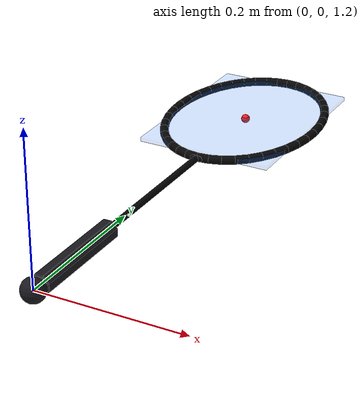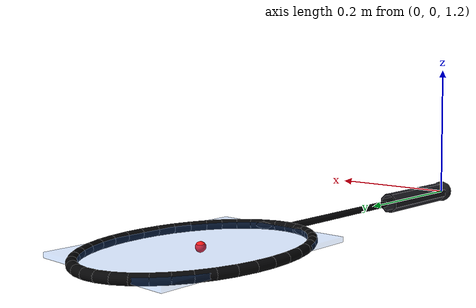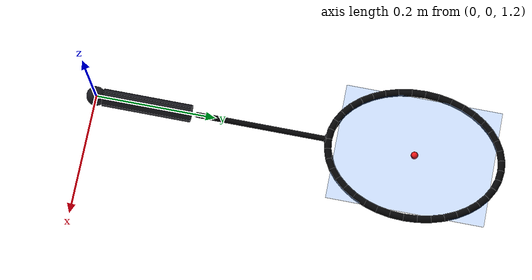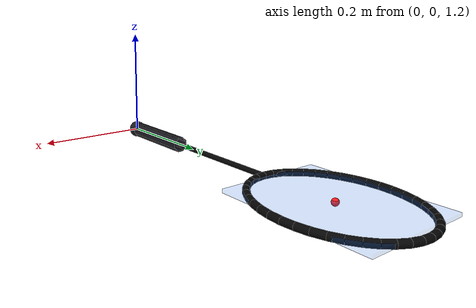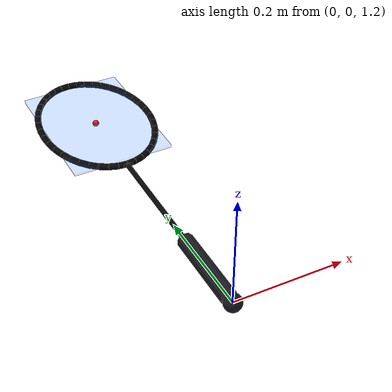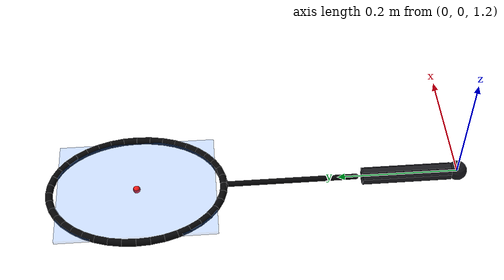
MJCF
<?xml version="1.0" encoding="UTF-8"?>
<mujoco model="badminton_racket_rigid">
  <compiler angle="degree" autolimits="true"/>
  <option timestep="0.0005" integrator="implicitfast" gravity="0 0 -9.81"/>
  <default>
    <geom condim="3" friction="0.8 0.02 0.001" solref="0.0015 1" solimp="0.95 0.99 0.001"/>
    <site rgba="1 0.3 0.1 1"/>
    <default class="frame_contact">
      <geom contype="1" conaffinity="1"/>
    </default>
    <default class="string_visual">
      <geom contype="0" conaffinity="0"/>
    </default>
    <default class="stringbed_ground_contact">
      <geom contype="1" conaffinity="1" group="1" condim="4" friction="1.1 0.05 0.003" solref="0.004 1" solimp="0.92 0.98 0.001"/>
    </default>
  </default>
  <worldbody>
    <body name="racket" pos="0 0 1.2">
      <freejoint name="racket_free"/>
      <inertial pos="0 0.31 0" mass="0.09" diaginertia="0.004944 0.00018 0.0049"/>
      <site name="grip_pose_site" pos="0 0.09 0" size="0.006"/>
      <site name="butt_site" pos="0 0 0" size="0.004" rgba="0.1 1 0.1 1"/>
      <site name="stringbed_center_site" pos="0 0.532 0" size="0.006" rgba="1 0.1 0.1 1"/>
      <site name="head_tip_site" pos="0 0.675 0" size="0.004" rgba="1 1 0 1"/>
      <geom name="butt_cap" class="frame_contact" type="sphere" pos="0 0 0" size="0.016" rgba="0.1 0.1 0.12 1" contype="1" conaffinity="1"/>
      <geom name="handle_grip" type="capsule" pos="0 0.086 0" quat="0.707107 0.707107 0 0" size="0.01321 0.074" rgba="0.1 0.1 0.12 0" contype="0" conaffinity="0" condim="4" friction="1.4 0.03 0.003" solref="0.004 1" solimp="0.9 0.97 0.002" margin="0.001"/>
      <geom name="handle_bevel_00" class="frame_contact" type="box" pos="0.012525 0.086 0" quat="0.707107 0 0.707107 0" size="0.00519 0.074 0.001" rgba="0.1 0.1 0.12 1" contype="1" conaffinity="1"/>
      <geom name="handle_bevel_01" class="frame_contact" type="box" pos="0.008857 0.086 0.008857" quat="0.92388 0 0.382683 0" size="0.00519 0.074 0.001" rgba="0.1 0.1 0.12 1" contype="1" conaffinity="1"/>
      <geom name="handle_bevel_02" class="frame_contact" type="box" pos="0 0.086 0.012525" quat="1 0 0 0" size="0.00519 0.074 0.001" rgba="0.1 0.1 0.12 1" contype="1" conaffinity="1"/>
      <geom name="handle_bevel_03" class="frame_contact" type="box" pos="-0.008857 0.086 0.008857" quat="0.92388 0 -0.382683 0" size="0.00519 0.074 0.001" rgba="0.1 0.1 0.12 1" contype="1" conaffinity="1"/>
      <geom name="handle_bevel_04" class="frame_contact" type="box" pos="-0.012525 0.086 0" quat="0.707107 0 -0.707107 0" size="0.00519 0.074 0.001" rgba="0.1 0.1 0.12 1" contype="1" conaffinity="1"/>
      <geom name="handle_bevel_05" class="frame_contact" type="box" pos="-0.008857 0.086 -0.008857" quat="0.382683 0 -0.92388 0" size="0.00519 0.074 0.001" rgba="0.1 0.1 0.12 1" contype="1" conaffinity="1"/>
      <geom name="handle_bevel_06" class="frame_contact" type="box" pos="0 0.086 -0.012525" quat="0 0 -1 0" size="0.00519 0.074 0.001" rgba="0.1 0.1 0.12 1" contype="1" conaffinity="1"/>
      <geom name="handle_bevel_07" class="frame_contact" type="box" pos="0.008857 0.086 -0.008857" quat="-0.382683 0 -0.92388 0" size="0.00519 0.074 0.001" rgba="0.1 0.1 0.12 1" contype="1" conaffinity="1"/>
      <geom name="shaft" class="frame_contact" type="capsule" fromto="0 0.17 0 0 0.385 0" size="0.0045" rgba="0.02 0.02 0.025 1" contype="1" conaffinity="1"/>
      <geom name="throat_left" class="frame_contact" type="capsule" fromto="0 0.385 0 -0.052 0.407 0" size="0.0045" rgba="0.02 0.02 0.025 1" contype="1" conaffinity="1"/>
      <geom name="throat_right" class="frame_contact" type="capsule" fromto="0 0.385 0 0.052 0.407 0" size="0.0045" rgba="0.02 0.02 0.025 1" contype="1" conaffinity="1"/>
      <geom name="head_frame_00" class="frame_contact" type="capsule" fromto="0.105 0.532 0 0.103707 0.55437 0" size="0.006" rgba="0.02 0.02 0.025 1" contype="1" conaffinity="1"/>
      <geom name="head_frame_01" class="frame_contact" type="capsule" fromto="0.103707 0.55437 0 0.099861 0.576189 0" size="0.006" rgba="0.02 0.02 0.025 1" contype="1" conaffinity="1"/>
      <geom name="head_frame_02" class="frame_contact" type="capsule" fromto="0.099861 0.576189 0 0.093556 0.596921 0" size="0.006" rgba="0.02 0.02 0.025 1" contype="1" conaffinity="1"/>
      <geom name="head_frame_03" class="frame_contact" type="capsule" fromto="0.093556 0.596921 0 0.084947 0.616053 0" size="0.006" rgba="0.02 0.02 0.025 1" contype="1" conaffinity="1"/>
      <geom name="head_frame_04" class="frame_contact" type="capsule" fromto="0.084947 0.616053 0 0.074246 0.633116 0" size="0.006" rgba="0.02 0.02 0.025 1" contype="1" conaffinity="1"/>
      <geom name="head_frame_05" class="frame_contact" type="capsule" fromto="0.074246 0.633116 0 0.061717 0.647689 0" size="0.006" rgba="0.02 0.02 0.025 1" contype="1" conaffinity="1"/>
      <geom name="head_frame_06" class="frame_contact" type="capsule" fromto="0.061717 0.647689 0 0.047669 0.659414 0" size="0.006" rgba="0.02 0.02 0.025 1" contype="1" conaffinity="1"/>
      <geom name="head_frame_07" class="frame_contact" type="capsule" fromto="0.047669 0.659414 0 0.032447 0.668001 0" size="0.006" rgba="0.02 0.02 0.025 1" contype="1" conaffinity="1"/>
      <geom name="head_frame_08" class="frame_contact" type="capsule" fromto="0.032447 0.668001 0 0.016426 0.673239 0" size="0.006" rgba="0.02 0.02 0.025 1" contype="1" conaffinity="1"/>
      <geom name="head_frame_09" class="frame_contact" type="capsule" fromto="0.016426 0.673239 0 0 0.675 0" size="0.006" rgba="0.02 0.02 0.025 1" contype="1" conaffinity="1"/>
      <geom name="head_frame_10" class="frame_contact" type="capsule" fromto="0 0.675 0 -0.016426 0.673239 0" size="0.006" rgba="0.02 0.02 0.025 1" contype="1" conaffinity="1"/>
      <geom name="head_frame_11" class="frame_contact" type="capsule" fromto="-0.016426 0.673239 0 -0.032447 0.668001 0" size="0.006" rgba="0.02 0.02 0.025 1" contype="1" conaffinity="1"/>
      <geom name="head_frame_12" class="frame_contact" type="capsule" fromto="-0.032447 0.668001 0 -0.047669 0.659414 0" size="0.006" rgba="0.02 0.02 0.025 1" contype="1" conaffinity="1"/>
      <geom name="head_frame_13" class="frame_contact" type="capsule" fromto="-0.047669 0.659414 0 -0.061717 0.647689 0" size="0.006" rgba="0.02 0.02 0.025 1" contype="1" conaffinity="1"/>
      <geom name="head_frame_14" class="frame_contact" type="capsule" fromto="-0.061717 0.647689 0 -0.074246 0.633116 0" size="0.006" rgba="0.02 0.02 0.025 1" contype="1" conaffinity="1"/>
      <geom name="head_frame_15" class="frame_contact" type="capsule" fromto="-0.074246 0.633116 0 -0.084947 0.616053 0" size="0.006" rgba="0.02 0.02 0.025 1" contype="1" conaffinity="1"/>
      <geom name="head_frame_16" class="frame_contact" type="capsule" fromto="-0.084947 0.616053 0 -0.093556 0.596921 0" size="0.006" rgba="0.02 0.02 0.025 1" contype="1" conaffinity="1"/>
      <geom name="head_frame_17" class="frame_contact" type="capsule" fromto="-0.093556 0.596921 0 -0.099861 0.576189 0" size="0.006" rgba="0.02 0.02 0.025 1" contype="1" conaffinity="1"/>
      <geom name="head_frame_18" class="frame_contact" type="capsule" fromto="-0.099861 0.576189 0 -0.103707 0.55437 0" size="0.006" rgba="0.02 0.02 0.025 1" contype="1" conaffinity="1"/>
      <geom name="head_frame_19" class="frame_contact" type="capsule" fromto="-0.103707 0.55437 0 -0.105 0.532 0" size="0.006" rgba="0.02 0.02 0.025 1" contype="1" conaffinity="1"/>
      <geom name="head_frame_20" class="frame_contact" type="capsule" fromto="-0.105 0.532 0 -0.103707 0.50963 0" size="0.006" rgba="0.02 0.02 0.025 1" contype="1" conaffinity="1"/>
      <geom name="head_frame_21" class="frame_contact" type="capsule" fromto="-0.103707 0.50963 0 -0.099861 0.487811 0" size="0.006" rgba="0.02 0.02 0.025 1" contype="1" conaffinity="1"/>
      <geom name="head_frame_22" class="frame_contact" type="capsule" fromto="-0.099861 0.487811 0 -0.093556 0.467079 0" size="0.006" rgba="0.02 0.02 0.025 1" contype="1" conaffinity="1"/>
      <geom name="head_frame_23" class="frame_contact" type="capsule" fromto="-0.093556 0.467079 0 -0.084947 0.447947 0" size="0.006" rgba="0.02 0.02 0.025 1" contype="1" conaffinity="1"/>
      <geom name="head_frame_24" class="frame_contact" type="capsule" fromto="-0.084947 0.447947 0 -0.074246 0.430884 0" size="0.006" rgba="0.02 0.02 0.025 1" contype="1" conaffinity="1"/>
      <geom name="head_frame_25" class="frame_contact" type="capsule" fromto="-0.074246 0.430884 0 -0.061717 0.416311 0" size="0.006" rgba="0.02 0.02 0.025 1" contype="1" conaffinity="1"/>
      <geom name="head_frame_26" class="frame_contact" type="capsule" fromto="-0.061717 0.416311 0 -0.047669 0.404586 0" size="0.006" rgba="0.02 0.02 0.025 1" contype="1" conaffinity="1"/>
      <geom name="head_frame_27" class="frame_contact" type="capsule" fromto="-0.047669 0.404586 0 -0.032447 0.395999 0" size="0.006" rgba="0.02 0.02 0.025 1" contype="1" conaffinity="1"/>
      <geom name="head_frame_28" class="frame_contact" type="capsule" fromto="-0.032447 0.395999 0 -0.016426 0.390761 0" size="0.006" rgba="0.02 0.02 0.025 1" contype="1" conaffinity="1"/>
      <geom name="head_frame_29" class="frame_contact" type="capsule" fromto="-0.016426 0.390761 0 0 0.389 0" size="0.006" rgba="0.02 0.02 0.025 1" contype="1" conaffinity="1"/>
      <geom name="head_frame_30" class="frame_contact" type="capsule" fromto="0 0.389 0 0.016426 0.390761 0" size="0.006" rgba="0.02 0.02 0.025 1" contype="1" conaffinity="1"/>
      <geom name="head_frame_31" class="frame_contact" type="capsule" fromto="0.016426 0.390761 0 0.032447 0.395999 0" size="0.006" rgba="0.02 0.02 0.025 1" contype="1" conaffinity="1"/>
      <geom name="head_frame_32" class="frame_contact" type="capsule" fromto="0.032447 0.395999 0 0.047669 0.404586 0" size="0.006" rgba="0.02 0.02 0.025 1" contype="1" conaffinity="1"/>
      <geom name="head_frame_33" class="frame_contact" type="capsule" fromto="0.047669 0.404586 0 0.061717 0.416311 0" size="0.006" rgba="0.02 0.02 0.025 1" contype="1" conaffinity="1"/>
      <geom name="head_frame_34" class="frame_contact" type="capsule" fromto="0.061717 0.416311 0 0.074246 0.430884 0" size="0.006" rgba="0.02 0.02 0.025 1" contype="1" conaffinity="1"/>
      <geom name="head_frame_35" class="frame_contact" type="capsule" fromto="0.074246 0.430884 0 0.084947 0.447947 0" size="0.006" rgba="0.02 0.02 0.025 1" contype="1" conaffinity="1"/>
      <geom name="head_frame_36" class="frame_contact" type="capsule" fromto="0.084947 0.447947 0 0.093556 0.467079 0" size="0.006" rgba="0.02 0.02 0.025 1" contype="1" conaffinity="1"/>
      <geom name="head_frame_37" class="frame_contact" type="capsule" fromto="0.093556 0.467079 0 0.099861 0.487811 0" size="0.006" rgba="0.02 0.02 0.025 1" contype="1" conaffinity="1"/>
      <geom name="head_frame_38" class="frame_contact" type="capsule" fromto="0.099861 0.487811 0 0.103707 0.50963 0" size="0.006" rgba="0.02 0.02 0.025 1" contype="1" conaffinity="1"/>
      <geom name="head_frame_39" class="frame_contact" type="capsule" fromto="0.103707 0.50963 0 0.105 0.532 0" size="0.006" rgba="0.02 0.02 0.025 1" contype="1" conaffinity="1"/>
      <geom name="string_main_00" class="string_visual" type="capsule" fromto="-0.08836 0.488841 0.00055 -0.08836 0.575159 0.00055" size="0.00035" rgba="0.92 0.92 0.86 0.78" contype="0" conaffinity="0"/>
      <geom name="string_main_01" class="string_visual" type="capsule" fromto="-0.079945 0.465459 0.00055 -0.079945 0.598541 0.00055" size="0.00035" rgba="0.92 0.92 0.86 0.78" contype="0" conaffinity="0"/>
      <geom name="string_main_02" class="string_visual" type="capsule" fromto="-0.07153 0.449926 0.00055 -0.07153 0.614074 0.00055" size="0.00035" rgba="0.92 0.92 0.86 0.78" contype="0" conaffinity="0"/>
      <geom name="string_main_03" class="string_visual" type="capsule" fromto="-0.063114 0.438255 0.00055 -0.063114 0.625745 0.00055" size="0.00035" rgba="0.92 0.92 0.86 0.78" contype="0" conaffinity="0"/>
      <geom name="string_main_04" class="string_visual" type="capsule" fromto="-0.054699 0.429123 0.00055 -0.054699 0.634877 0.00055" size="0.00035" rgba="0.92 0.92 0.86 0.78" contype="0" conaffinity="0"/>
      <geom name="string_main_05" class="string_visual" type="capsule" fromto="-0.046284 0.421897 0.00055 -0.046284 0.642103 0.00055" size="0.00035" rgba="0.92 0.92 0.86 0.78" contype="0" conaffinity="0"/>
      <geom name="string_main_06" class="string_visual" type="capsule" fromto="-0.037869 0.416219 0.00055 -0.037869 0.647781 0.00055" size="0.00035" rgba="0.92 0.92 0.86 0.78" contype="0" conaffinity="0"/>
      <geom name="string_main_07" class="string_visual" type="capsule" fromto="-0.029453 0.41187 0.00055 -0.029453 0.65213 0.00055" size="0.00035" rgba="0.92 0.92 0.86 0.78" contype="0" conaffinity="0"/>
      <geom name="string_main_08" class="string_visual" type="capsule" fromto="-0.021038 0.408709 0.00055 -0.021038 0.655291 0.00055" size="0.00035" rgba="0.92 0.92 0.86 0.78" contype="0" conaffinity="0"/>
      <geom name="string_main_09" class="string_visual" type="capsule" fromto="-0.012623 0.406646 0.00055 -0.012623 0.657354 0.00055" size="0.00035" rgba="0.92 0.92 0.86 0.78" contype="0" conaffinity="0"/>
      <geom name="string_main_10" class="string_visual" type="capsule" fromto="-0.004208 0.405627 0.00055 -0.004208 0.658373 0.00055" size="0.00035" rgba="0.92 0.92 0.86 0.78" contype="0" conaffinity="0"/>
      <geom name="string_main_11" class="string_visual" type="capsule" fromto="0.004208 0.405627 0.00055 0.004208 0.658373 0.00055" size="0.00035" rgba="0.92 0.92 0.86 0.78" contype="0" conaffinity="0"/>
      <geom name="string_main_12" class="string_visual" type="capsule" fromto="0.012623 0.406646 0.00055 0.012623 0.657354 0.00055" size="0.00035" rgba="0.92 0.92 0.86 0.78" contype="0" conaffinity="0"/>
      <geom name="string_main_13" class="string_visual" type="capsule" fromto="0.021038 0.408709 0.00055 0.021038 0.655291 0.00055" size="0.00035" rgba="0.92 0.92 0.86 0.78" contype="0" conaffinity="0"/>
      <geom name="string_main_14" class="string_visual" type="capsule" fromto="0.029453 0.41187 0.00055 0.029453 0.65213 0.00055" size="0.00035" rgba="0.92 0.92 0.86 0.78" contype="0" conaffinity="0"/>
      <geom name="string_main_15" class="string_visual" type="capsule" fromto="0.037869 0.416219 0.00055 0.037869 0.647781 0.00055" size="0.00035" rgba="0.92 0.92 0.86 0.78" contype="0" conaffinity="0"/>
      <geom name="string_main_16" class="string_visual" type="capsule" fromto="0.046284 0.421897 0.00055 0.046284 0.642103 0.00055" size="0.00035" rgba="0.92 0.92 0.86 0.78" contype="0" conaffinity="0"/>
      <geom name="string_main_17" class="string_visual" type="capsule" fromto="0.054699 0.429123 0.00055 0.054699 0.634877 0.00055" size="0.00035" rgba="0.92 0.92 0.86 0.78" contype="0" conaffinity="0"/>
      <geom name="string_main_18" class="string_visual" type="capsule" fromto="0.063114 0.438255 0.00055 0.063114 0.625745 0.00055" size="0.00035" rgba="0.92 0.92 0.86 0.78" contype="0" conaffinity="0"/>
      <geom name="string_main_19" class="string_visual" type="capsule" fromto="0.07153 0.449926 0.00055 0.07153 0.614074 0.00055" size="0.00035" rgba="0.92 0.92 0.86 0.78" contype="0" conaffinity="0"/>
      <geom name="string_main_20" class="string_visual" type="capsule" fromto="0.079945 0.465459 0.00055 0.079945 0.598541 0.00055" size="0.00035" rgba="0.92 0.92 0.86 0.78" contype="0" conaffinity="0"/>
      <geom name="string_main_21" class="string_visual" type="capsule" fromto="0.08836 0.488841 0.00055 0.08836 0.575159 0.00055" size="0.00035" rgba="0.92 0.92 0.86 0.78" contype="0" conaffinity="0"/>
      <geom name="string_cross_00" class="string_visual" type="capsule" fromto="-0.03207 0.41309 -0.00055 0.03207 0.41309 -0.00055" size="0.00035" rgba="0.92 0.92 0.86 0.78" contype="0" conaffinity="0"/>
      <geom name="string_cross_01" class="string_visual" type="capsule" fromto="-0.050119 0.424981 -0.00055 0.050119 0.424981 -0.00055" size="0.00035" rgba="0.92 0.92 0.86 0.78" contype="0" conaffinity="0"/>
      <geom name="string_cross_02" class="string_visual" type="capsule" fromto="-0.061961 0.436872 -0.00055 0.061961 0.436872 -0.00055" size="0.00035" rgba="0.92 0.92 0.86 0.78" contype="0" conaffinity="0"/>
      <geom name="string_cross_03" class="string_visual" type="capsule" fromto="-0.070784 0.448763 -0.00055 0.070784 0.448763 -0.00055" size="0.00035" rgba="0.92 0.92 0.86 0.78" contype="0" conaffinity="0"/>
      <geom name="string_cross_04" class="string_visual" type="capsule" fromto="-0.077623 0.460654 -0.00055 0.077623 0.460654 -0.00055" size="0.00035" rgba="0.92 0.92 0.86 0.78" contype="0" conaffinity="0"/>
      <geom name="string_cross_05" class="string_visual" type="capsule" fromto="-0.082971 0.472545 -0.00055 0.082971 0.472545 -0.00055" size="0.00035" rgba="0.92 0.92 0.86 0.78" contype="0" conaffinity="0"/>
      <geom name="string_cross_06" class="string_visual" type="capsule" fromto="-0.087102 0.484436 -0.00055 0.087102 0.484436 -0.00055" size="0.00035" rgba="0.92 0.92 0.86 0.78" contype="0" conaffinity="0"/>
      <geom name="string_cross_07" class="string_visual" type="capsule" fromto="-0.090185 0.496327 -0.00055 0.090185 0.496327 -0.00055" size="0.00035" rgba="0.92 0.92 0.86 0.78" contype="0" conaffinity="0"/>
      <geom name="string_cross_08" class="string_visual" type="capsule" fromto="-0.092324 0.508218 -0.00055 0.092324 0.508218 -0.00055" size="0.00035" rgba="0.92 0.92 0.86 0.78" contype="0" conaffinity="0"/>
      <geom name="string_cross_09" class="string_visual" type="capsule" fromto="-0.093584 0.520109 -0.00055 0.093584 0.520109 -0.00055" size="0.00035" rgba="0.92 0.92 0.86 0.78" contype="0" conaffinity="0"/>
      <geom name="string_cross_10" class="string_visual" type="capsule" fromto="-0.094 0.532 -0.00055 0.094 0.532 -0.00055" size="0.00035" rgba="0.92 0.92 0.86 0.78" contype="0" conaffinity="0"/>
      <geom name="string_cross_11" class="string_visual" type="capsule" fromto="-0.093584 0.543891 -0.00055 0.093584 0.543891 -0.00055" size="0.00035" rgba="0.92 0.92 0.86 0.78" contype="0" conaffinity="0"/>
      <geom name="string_cross_12" class="string_visual" type="capsule" fromto="-0.092324 0.555782 -0.00055 0.092324 0.555782 -0.00055" size="0.00035" rgba="0.92 0.92 0.86 0.78" contype="0" conaffinity="0"/>
      <geom name="string_cross_13" class="string_visual" type="capsule" fromto="-0.090185 0.567673 -0.00055 0.090185 0.567673 -0.00055" size="0.00035" rgba="0.92 0.92 0.86 0.78" contype="0" conaffinity="0"/>
      <geom name="string_cross_14" class="string_visual" type="capsule" fromto="-0.087102 0.579564 -0.00055 0.087102 0.579564 -0.00055" size="0.00035" rgba="0.92 0.92 0.86 0.78" contype="0" conaffinity="0"/>
      <geom name="string_cross_15" class="string_visual" type="capsule" fromto="-0.082971 0.591455 -0.00055 0.082971 0.591455 -0.00055" size="0.00035" rgba="0.92 0.92 0.86 0.78" contype="0" conaffinity="0"/>
      <geom name="string_cross_16" class="string_visual" type="capsule" fromto="-0.077623 0.603346 -0.00055 0.077623 0.603346 -0.00055" size="0.00035" rgba="0.92 0.92 0.86 0.78" contype="0" conaffinity="0"/>
      <geom name="string_cross_17" class="string_visual" type="capsule" fromto="-0.070784 0.615237 -0.00055 0.070784 0.615237 -0.00055" size="0.00035" rgba="0.92 0.92 0.86 0.78" contype="0" conaffinity="0"/>
      <geom name="string_cross_18" class="string_visual" type="capsule" fromto="-0.061961 0.627128 -0.00055 0.061961 0.627128 -0.00055" size="0.00035" rgba="0.92 0.92 0.86 0.78" contype="0" conaffinity="0"/>
      <geom name="string_cross_19" class="string_visual" type="capsule" fromto="-0.050119 0.639019 -0.00055 0.050119 0.639019 -0.00055" size="0.00035" rgba="0.92 0.92 0.86 0.78" contype="0" conaffinity="0"/>
      <geom name="string_cross_20" class="string_visual" type="capsule" fromto="-0.03207 0.65091 -0.00055 0.03207 0.65091 -0.00055" size="0.00035" rgba="0.92 0.92 0.86 0.78" contype="0" conaffinity="0"/>
      <geom name="stringbed_ground_contact_proxy" class="stringbed_ground_contact" type="box" pos="0 0.532 0" size="0.096 0.13 0.003" rgba="0.1 0.45 1 0.035" condim="4" friction="1.1 0.05 0.003"/>
      <geom name="stringbed_proxy_visual" type="box" pos="0 0.532 0" size="0.094 0.1265 0.0015" rgba="0.1 0.45 1 0.08" contype="0" conaffinity="0"/>
    </body>
  </worldbody>
</mujoco>
